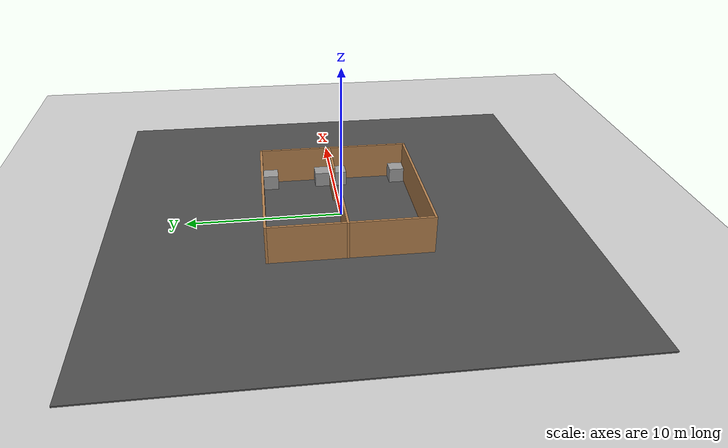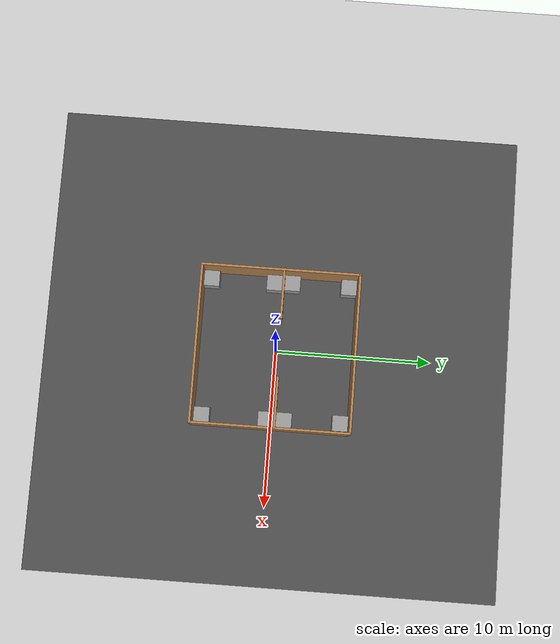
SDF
<sdf version="1.6">
 <world name="default">
  <light name="sun" type="directional">
   <pose>0 0 10 0 -0 0</pose>
   <diffuse>0.8 0.8 0.8 1</diffuse>
   <specular>0.2 0.2 0.2 1</specular>
   <attenuation>
    <range>1000</range>
    <constant>0.9</constant>
    <linear>0.01</linear>
    <quadratic>0.001</quadratic>
   </attenuation>
   <direction>-0.5 0.1 -0.9</direction>
  </light>
  <model name="ground_plane">
   <static>1</static>
   <link name="link">
    <collision name="collision">
     <geometry><plane><normal>0 0 1</normal><size>100 100</size></plane></geometry>
     <surface>
      <contact><collide_bitmask>65535</collide_bitmask></contact>
      <friction><ode><mu>100</mu><mu2>50</mu2></ode></friction>
     </surface>
    </collision>
    <visual name="visual">
     <cast_shadows>0</cast_shadows>
     <geometry><plane><normal>0 0 1</normal><size>100 100</size></plane></geometry>
     <material>
      <script><uri>file://media/materials/scripts/gazebo.material</uri><name>Gazebo/Grey</name></script>
     </material>
    </visual>
   </link>
  </model>
  <gravity>0 0 -9.8</gravity>
  <model name="asap_asphalt">
   <static>1</static>
   <link name="asphalt">
    <collision name="collision"><geometry><box><size>30 30 0.1</size></box></geometry></collision>
    <visual name="visual">
     <cast_shadows>0</cast_shadows>
     <geometry><box><size>30 30 0.1</size></box></geometry>
     <material>
      <script>
       <uri>model://asphalt_plane/materials/scripts</uri>
       <uri>model://asphalt_plane/materials/textures</uri>
       <name>vrc/asphalt</name>
      </script>
     </material>
    </visual>
   </link>
  </model>
  <model name="asap_walls">
   <link name="Wall_1">
    <collision name="Wall_10_Collision">
     <geometry><box><size>3.25 0.15 2.5</size></box></geometry>
     <pose>0 0 1.25 0 -0 0</pose>
    </collision>
    <visual name="Wall_10_Visual">
     <pose>0 0 1.25 0 -0 0</pose>
     <geometry><box><size>3.25 0.15 2.5</size></box></geometry>
     <material>
      <script><uri>file://media/materials/scripts/gazebo.material</uri><name>Gazebo/Wood</name></script>
      <ambient>1 1 1 1</ambient>
     </material>
     <meta><layer>0</layer></meta>
    </visual>
    <pose>3.41071 0.27419 0 0 -0 3.14159</pose>
   </link>
   <link name="Wall_2">
    <collision name="Wall_12_Collision">
     <geometry><box><size>3.25 0.15 2.5</size></box></geometry>
     <pose>0 0 1.25 0 -0 0</pose>
    </collision>
    <visual name="Wall_12_Visual">
     <pose>0 0 1.25 0 -0 0</pose>
     <geometry><box><size>3.25 0.15 2.5</size></box></geometry>
     <material>
      <script><uri>file://media/materials/scripts/gazebo.material</uri><name>Gazebo/Wood</name></script>
      <ambient>1 1 1 1</ambient>
     </material>
     <meta><layer>0</layer></meta>
    </visual>
    <pose>-3.46604 0.203432 0 0 -0 0</pose>
   </link>
   <link name="Wall_3">
    <collision name="Wall_2_Collision">
     <geometry><box><size>10.15 0.15 2.5</size></box></geometry>
     <pose>0 0 1.25 0 -0 0</pose>
    </collision>
    <visual name="Wall_2_Visual">
     <pose>0 0 1.25 0 -0 0</pose>
     <geometry><box><size>10.15 0.15 2.5</size></box></geometry>
     <material>
      <script><uri>file://media/materials/scripts/gazebo.material</uri><name>Gazebo/Wood</name></script>
      <ambient>1 1 1 1</ambient>
     </material>
     <meta><layer>0</layer></meta>
    </visual>
    <pose>-4.98397 0 0 0 -0 -1.5708</pose>
   </link>
   <link name="Wall_4">
    <collision name="Wall_3_Collision">
     <geometry><box><size>10.15 0.15 2.5</size></box></geometry>
     <pose>0 0 1.25 0 -0 0</pose>
    </collision>
    <visual name="Wall_3_Visual">
     <pose>0 0 1.25 0 -0 0</pose>
     <geometry><box><size>10.15 0.15 2.5</size></box></geometry>
     <material>
      <script><uri>file://media/materials/scripts/gazebo.material</uri><name>Gazebo/Wood</name></script>
      <ambient>1 1 1 1</ambient>
     </material>
     <meta><layer>0</layer></meta>
    </visual>
    <pose>0.016034 -5 0 0 -0 0</pose>
   </link>
   <link name="Wall_5">
    <collision name="Wall_4_Collision">
     <geometry><box><size>10.15 0.15 2.5</size></box></geometry>
     <pose>0 0 1.25 0 -0 0</pose>
    </collision>
    <visual name="Wall_4_Visual">
     <pose>0 0 1.25 0 -0 0</pose>
     <geometry><box><size>10.15 0.15 2.5</size></box></geometry>
     <material>
      <script><uri>file://media/materials/scripts/gazebo.material</uri><name>Gazebo/Wood</name></script>
      <ambient>1 1 1 1</ambient>
     </material>
     <meta><layer>0</layer></meta>
    </visual>
    <pose>5.01603 0 0 0 -0 1.5708</pose>
   </link>
   <link name="Wall_6">
    <collision name="Wall_5_Collision">
     <geometry><box><size>10.15 0.15 2.5</size></box></geometry>
     <pose>0 0 1.25 0 -0 0</pose>
    </collision>
    <visual name="Wall_5_Visual">
     <pose>0 0 1.25 0 -0 0</pose>
     <geometry><box><size>10.15 0.15 2.5</size></box></geometry>
     <material>
      <script><uri>file://media/materials/scripts/gazebo.material</uri><name>Gazebo/Wood</name></script>
      <ambient>1 1 1 1</ambient>
     </material>
     <meta><layer>0</layer></meta>
    </visual>
    <pose>0.016034 5 0 0 -0 3.14159</pose>
   </link>
   <static>1</static>
  </model>
  <magnetic_field>6e-06 2.3e-05 -4.2e-05</magnetic_field>
  <atmosphere type="adiabatic"/>
  <physics name="default_physics" default="0" type="ode">
   <max_step_size>0.001</max_step_size>
   <real_time_factor>1</real_time_factor>
   <real_time_update_rate>1000</real_time_update_rate>
  </physics>
  <scene><ambient>0.4 0.4 0.4 1</ambient><background>0.7 0.7 0.7 1</background><shadows>1</shadows></scene>
  <audio><device>default</device></audio>
  <spherical_coordinates>
   <surface_model>EARTH_WGS84</surface_model>
   <latitude_deg>0</latitude_deg>
   <longitude_deg>0</longitude_deg>
   <elevation>0</elevation>
   <heading_deg>0</heading_deg>
  </spherical_coordinates>
  <model name="unit_box">
   <pose>4.35963 4.42476 0.55 0 -0 0</pose>
   <link name="link">
    <inertial>
     <mass>1</mass>
     <inertia>
      <ixx>0.166667</ixx>
      <ixy>0</ixy>
      <ixz>0</ixz>
      <iyy>0.166667</iyy>
      <iyz>0</iyz>
      <izz>0.166667</izz>
     </inertia>
    </inertial>
    <collision name="collision"><geometry><box><size>1 1 1</size></box></geometry></collision>
    <visual name="visual">
     <geometry><box><size>1 1 1</size></box></geometry>
     <material>
      <script><name>Gazebo/Grey</name><uri>file://media/materials/scripts/gazebo.material</uri></script>
     </material>
    </visual>
   </link>
  </model>
  <model name="unit_box_0">
   <pose>4.43334 0.849853 0.550002 -4e-06 -0 5e-06</pose>
   <link name="link">
    <inertial>
     <mass>1</mass>
     <inertia>
      <ixx>0.166667</ixx>
      <ixy>0</ixy>
      <ixz>0</ixz>
      <iyy>0.166667</iyy>
      <iyz>0</iyz>
      <izz>0.166667</izz>
     </inertia>
    </inertial>
    <collision name="collision"><geometry><box><size>1 1 1</size></box></geometry></collision>
    <visual name="visual">
     <geometry><box><size>1 1 1</size></box></geometry>
     <material>
      <script><name>Gazebo/Grey</name><uri>file://media/materials/scripts/gazebo.material</uri></script>
     </material>
    </visual>
   </link>
  </model>
  <model name="unit_box_1">
   <pose>4.441 -0.301003 0.549995 0 -9e-06 -4.6e-05</pose>
   <link name="link">
    <inertial>
     <mass>1</mass>
     <inertia>
      <ixx>0.166667</ixx>
      <ixy>0</ixy>
      <ixz>0</ixz>
      <iyy>0.166667</iyy>
      <iyz>0</iyz>
      <izz>0.166667</izz>
     </inertia>
    </inertial>
    <collision name="collision"><geometry><box><size>1 1 1</size></box></geometry></collision>
    <visual name="visual">
     <geometry><box><size>1 1 1</size></box></geometry>
     <material>
      <script><name>Gazebo/Grey</name><uri>file://media/materials/scripts/gazebo.material</uri></script>
     </material>
    </visual>
   </link>
  </model>
  <model name="unit_box_2">
   <pose>4.44091 -4.38859 0.55 0 -0 7e-06</pose>
   <link name="link">
    <inertial>
     <mass>1</mass>
     <inertia>
      <ixx>0.166667</ixx>
      <ixy>0</ixy>
      <ixz>0</ixz>
      <iyy>0.166667</iyy>
      <iyz>0</iyz>
      <izz>0.166667</izz>
     </inertia>
    </inertial>
    <collision name="collision"><geometry><box><size>1 1 1</size></box></geometry></collision>
    <visual name="visual">
     <geometry><box><size>1 1 1</size></box></geometry>
     <material>
      <script><name>Gazebo/Grey</name><uri>file://media/materials/scripts/gazebo.material</uri></script>
     </material>
    </visual>
   </link>
  </model>
  <model name="unit_box_3">
   <pose>-4.36235 -0.371885 0.55 0 -0 -3e-06</pose>
   <link name="link">
    <inertial>
     <mass>1</mass>
     <inertia>
      <ixx>0.166667</ixx>
      <ixy>0</ixy>
      <ixz>0</ixz>
      <iyy>0.166667</iyy>
      <iyz>0</iyz>
      <izz>0.166667</izz>
     </inertia>
    </inertial>
    <collision name="collision"><geometry><box><size>1 1 1</size></box></geometry></collision>
    <visual name="visual">
     <geometry><box><size>1 1 1</size></box></geometry>
     <material>
      <script><name>Gazebo/Grey</name><uri>file://media/materials/scripts/gazebo.material</uri></script>
     </material>
    </visual>
   </link>
  </model>
  <model name="unit_box_4">
   <pose>-4.36356 -4.4248 0.550002 -4e-06 -0 4e-06</pose>
   <link name="link">
    <inertial>
     <mass>1</mass>
     <inertia>
      <ixx>0.166667</ixx>
      <ixy>0</ixy>
      <ixz>0</ixz>
      <iyy>0.166667</iyy>
      <iyz>0</iyz>
      <izz>0.166667</izz>
     </inertia>
    </inertial>
    <collision name="collision"><geometry><box><size>1 1 1</size></box></geometry></collision>
    <visual name="visual">
     <geometry><box><size>1 1 1</size></box></geometry>
     <material>
      <script><name>Gazebo/Grey</name><uri>file://media/materials/scripts/gazebo.material</uri></script>
     </material>
    </visual>
   </link>
  </model>
  <model name="unit_box_5">
   <pose>-4.39556 4.42483 0.550002 -4e-06 -0 -0.000212</pose>
   <link name="link">
    <inertial>
     <mass>1</mass>
     <inertia>
      <ixx>0.166667</ixx>
      <ixy>0</ixy>
      <ixz>0</ixz>
      <iyy>0.166667</iyy>
      <iyz>0</iyz>
      <izz>0.166667</izz>
     </inertia>
    </inertial>
    <collision name="collision"><geometry><box><size>1 1 1</size></box></geometry></collision>
    <visual name="visual">
     <geometry><box><size>1 1 1</size></box></geometry>
     <material>
      <script><name>Gazebo/Grey</name><uri>file://media/materials/scripts/gazebo.material</uri></script>
     </material>
    </visual>
   </link>
  </model>
  <model name="unit_box_6">
   <pose>-4.40459 0.781862 0.549995 1e-05 -0 -0.000299</pose>
   <link name="link">
    <inertial>
     <mass>1</mass>
     <inertia>
      <ixx>0.166667</ixx>
      <ixy>0</ixy>
      <ixz>0</ixz>
      <iyy>0.166667</iyy>
      <iyz>0</iyz>
      <izz>0.166667</izz>
     </inertia>
    </inertial>
    <collision name="collision"><geometry><box><size>1 1 1</size></box></geometry></collision>
    <visual name="visual">
     <geometry><box><size>1 1 1</size></box></geometry>
     <material>
      <script><name>Gazebo/Grey</name><uri>file://media/materials/scripts/gazebo.material</uri></script>
     </material>
    </visual>
   </link>
  </model>
 </world>
</sdf>
